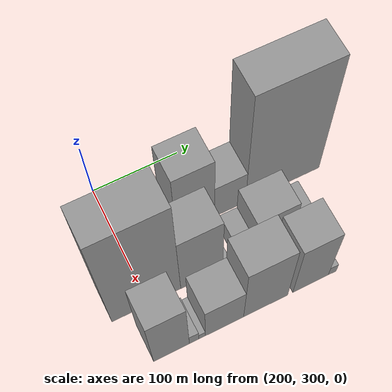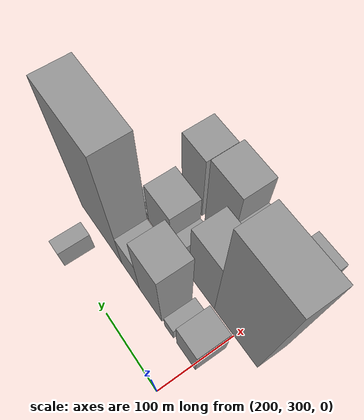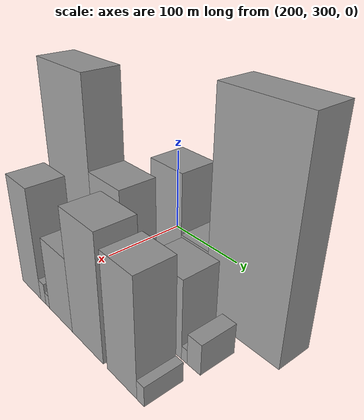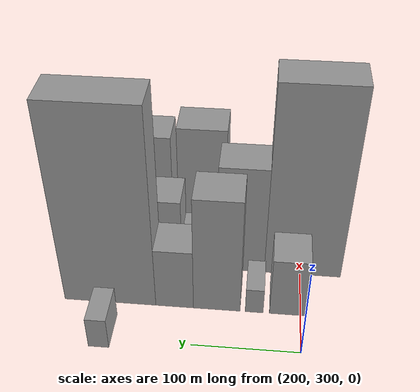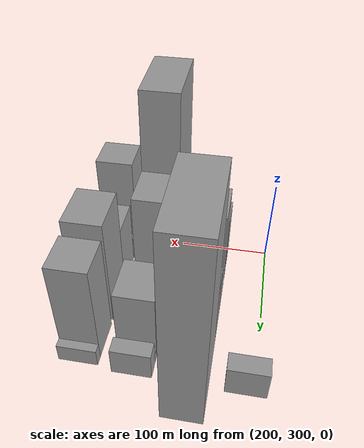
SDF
<sdf version="1.6">
 <world name="default">
  <model name="building_145">
   <static>1</static>
   <pose>210.0000 483.9629 0 0.000000 0.000000 0.000000</pose>
   <link name="link">
    <pose>0 0 18.00 0 0 0</pose>
    <collision name="collision"><geometry><box><size>40.0000 19.0243 36.0000</size></box></geometry></collision>
    <visual name="visual">
     <cast_shadows>0</cast_shadows>
     <geometry><box><size>40.0000 19.0243 36.0000</size></box></geometry>
     <material>
      <script>
       <uri>model://grey_wall/materials/scripts</uri>
       <uri>model://grey_wall/materials/textures</uri>
       <name>vrc/grey_wall</name>
      </script>
     </material>
    </visual>
   </link>
  </model>
  <model name="building_193">
   <static>1</static>
   <pose>265.0000 312.2725 0 0.000000 0.000000 0.000000</pose>
   <link name="link">
    <pose>0 0 34.50 0 0 0</pose>
    <collision name="collision"><geometry><box><size>40.0000 34.6798 69.0000</size></box></geometry></collision>
    <visual name="visual">
     <cast_shadows>0</cast_shadows>
     <geometry><box><size>40.0000 34.6798 69.0000</size></box></geometry>
     <material>
      <script>
       <uri>model://grey_wall/materials/scripts</uri>
       <uri>model://grey_wall/materials/textures</uri>
       <name>vrc/grey_wall</name>
      </script>
     </material>
    </visual>
   </link>
  </model>
  <model name="building_194">
   <static>1</static>
   <pose>265.0000 344.1793 0 0.000000 0.000000 0.000000</pose>
   <link name="link">
    <pose>0 0 15.00 0 0 0</pose>
    <collision name="collision"><geometry><box><size>40.0000 17.1338 30.0000</size></box></geometry></collision>
    <visual name="visual">
     <cast_shadows>0</cast_shadows>
     <geometry><box><size>40.0000 17.1338 30.0000</size></box></geometry>
     <material>
      <script>
       <uri>model://grey_wall/materials/scripts</uri>
       <uri>model://grey_wall/materials/textures</uri>
       <name>vrc/grey_wall</name>
      </script>
     </material>
    </visual>
   </link>
  </model>
  <model name="building_195">
   <static>1</static>
   <pose>265.0000 380.2860 0 0.000000 0.000000 0.000000</pose>
   <link name="link">
    <pose>0 0 67.50 0 0 0</pose>
    <collision name="collision"><geometry><box><size>40.0000 45.0798 135.0000</size></box></geometry></collision>
    <visual name="visual">
     <cast_shadows>0</cast_shadows>
     <geometry><box><size>40.0000 45.0798 135.0000</size></box></geometry>
     <material>
      <script>
       <uri>model://grey_wall/materials/scripts</uri>
       <uri>model://grey_wall/materials/textures</uri>
       <name>vrc/grey_wall</name>
      </script>
     </material>
    </visual>
   </link>
  </model>
  <model name="building_196">
   <static>1</static>
   <pose>265.0000 421.1002 0 0.000000 0.000000 0.000000</pose>
   <link name="link">
    <pose>0 0 36.00 0 0 0</pose>
    <collision name="collision"><geometry><box><size>40.0000 36.5485 72.0000</size></box></geometry></collision>
    <visual name="visual">
     <cast_shadows>0</cast_shadows>
     <geometry><box><size>40.0000 36.5485 72.0000</size></box></geometry>
     <material>
      <script>
       <uri>model://grey_wall/materials/scripts</uri>
       <uri>model://grey_wall/materials/textures</uri>
       <name>vrc/grey_wall</name>
      </script>
     </material>
    </visual>
   </link>
  </model>
  <model name="building_197">
   <static>1</static>
   <pose>265.0000 484.1575 0 0.000000 0.000000 0.000000</pose>
   <link name="link">
    <pose>0 0 112.50 0 0 0</pose>
    <collision name="collision"><geometry><box><size>40.0000 89.5661 225.0000</size></box></geometry></collision>
    <visual name="visual">
     <cast_shadows>0</cast_shadows>
     <geometry><box><size>40.0000 89.5661 225.0000</size></box></geometry>
     <material>
      <script>
       <uri>model://grey_wall/materials/scripts</uri>
       <uri>model://grey_wall/materials/textures</uri>
       <name>vrc/grey_wall</name>
      </script>
     </material>
    </visual>
   </link>
  </model>
  <model name="building_246">
   <static>1</static>
   <pose>320.0000 297.9126 0 0.000000 0.000000 0.000000</pose>
   <link name="link">
    <pose>0 0 109.50 0 0 0</pose>
    <collision name="collision"><geometry><box><size>40.0000 76.8711 219.0000</size></box></geometry></collision>
    <visual name="visual">
     <cast_shadows>0</cast_shadows>
     <geometry><box><size>40.0000 76.8711 219.0000</size></box></geometry>
     <material>
      <script>
       <uri>model://grey_wall/materials/scripts</uri>
       <uri>model://grey_wall/materials/textures</uri>
       <name>vrc/grey_wall</name>
      </script>
     </material>
    </visual>
   </link>
  </model>
  <model name="building_247">
   <static>1</static>
   <pose>320.0000 360.2757 0 0.000000 0.000000 0.000000</pose>
   <link name="link">
    <pose>0 0 64.50 0 0 0</pose>
    <collision name="collision"><geometry><box><size>40.0000 47.8551 129.0000</size></box></geometry></collision>
    <visual name="visual">
     <cast_shadows>0</cast_shadows>
     <geometry><box><size>40.0000 47.8551 129.0000</size></box></geometry>
     <material>
      <script>
       <uri>model://grey_wall/materials/scripts</uri>
       <uri>model://grey_wall/materials/textures</uri>
       <name>vrc/grey_wall</name>
      </script>
     </material>
    </visual>
   </link>
  </model>
  <model name="building_248">
   <static>1</static>
   <pose>320.0000 388.4399 0 0.000000 0.000000 0.000000</pose>
   <link name="link">
    <pose>0 0 9.00 0 0 0</pose>
    <collision name="collision"><geometry><box><size>40.0000 8.4733 18.0000</size></box></geometry></collision>
    <visual name="visual">
     <cast_shadows>0</cast_shadows>
     <geometry><box><size>40.0000 8.4733 18.0000</size></box></geometry>
     <material>
      <script>
       <uri>model://grey_wall/materials/scripts</uri>
       <uri>model://grey_wall/materials/textures</uri>
       <name>vrc/grey_wall</name>
      </script>
     </material>
    </visual>
   </link>
  </model>
  <model name="building_249">
   <static>1</static>
   <pose>320.0000 410.5685 0 0.000000 0.000000 0.000000</pose>
   <link name="link">
    <pose>0 0 19.50 0 0 0</pose>
    <collision name="collision"><geometry><box><size>40.0000 19.7838 39.0000</size></box></geometry></collision>
    <visual name="visual">
     <cast_shadows>0</cast_shadows>
     <geometry><box><size>40.0000 19.7838 39.0000</size></box></geometry>
     <material>
      <script>
       <uri>model://grey_wall/materials/scripts</uri>
       <uri>model://grey_wall/materials/textures</uri>
       <name>vrc/grey_wall</name>
      </script>
     </material>
    </visual>
   </link>
  </model>
  <model name="building_250">
   <static>1</static>
   <pose>320.0000 444.0755 0 0.000000 0.000000 0.000000</pose>
   <link name="link">
    <pose>0 0 42.00 0 0 0</pose>
    <collision name="collision"><geometry><box><size>40.0000 47.2302 84.0000</size></box></geometry></collision>
    <visual name="visual">
     <cast_shadows>0</cast_shadows>
     <geometry><box><size>40.0000 47.2302 84.0000</size></box></geometry>
     <material>
      <script>
       <uri>model://grey_wall/materials/scripts</uri>
       <uri>model://grey_wall/materials/textures</uri>
       <name>vrc/grey_wall</name>
      </script>
     </material>
    </visual>
   </link>
  </model>
  <model name="building_251">
   <static>1</static>
   <pose>320.0000 471.2905 0 0.000000 0.000000 0.000000</pose>
   <link name="link">
    <pose>0 0 7.50 0 0 0</pose>
    <collision name="collision"><geometry><box><size>40.0000 7.1999 15.0000</size></box></geometry></collision>
    <visual name="visual">
     <cast_shadows>0</cast_shadows>
     <geometry><box><size>40.0000 7.1999 15.0000</size></box></geometry>
     <material>
      <script>
       <uri>model://grey_wall/materials/scripts</uri>
       <uri>model://grey_wall/materials/textures</uri>
       <name>vrc/grey_wall</name>
      </script>
     </material>
    </visual>
   </link>
  </model>
  <model name="building_252">
   <static>1</static>
   <pose>320.0000 483.2172 0 0.000000 0.000000 0.000000</pose>
   <link name="link">
    <pose>0 0 16.50 0 0 0</pose>
    <collision name="collision"><geometry><box><size>40.0000 16.6533 33.0000</size></box></geometry></collision>
    <visual name="visual">
     <cast_shadows>0</cast_shadows>
     <geometry><box><size>40.0000 16.6533 33.0000</size></box></geometry>
     <material>
      <script>
       <uri>model://grey_wall/materials/scripts</uri>
       <uri>model://grey_wall/materials/textures</uri>
       <name>vrc/grey_wall</name>
      </script>
     </material>
    </visual>
   </link>
  </model>
  <model name="building_297">
   <static>1</static>
   <pose>375.0000 299.4305 0 0.000000 0.000000 0.000000</pose>
   <link name="link">
    <pose>0 0 61.50 0 0 0</pose>
    <collision name="collision"><geometry><box><size>40.0000 39.3001 123.0000</size></box></geometry></collision>
    <visual name="visual">
     <cast_shadows>0</cast_shadows>
     <geometry><box><size>40.0000 39.3001 123.0000</size></box></geometry>
     <material>
      <script>
       <uri>model://grey_wall/materials/scripts</uri>
       <uri>model://grey_wall/materials/textures</uri>
       <name>vrc/grey_wall</name>
      </script>
     </material>
    </visual>
   </link>
  </model>
  <model name="building_298">
   <static>1</static>
   <pose>375.0000 324.2861 0 0.000000 0.000000 0.000000</pose>
   <link name="link">
    <pose>0 0 12.00 0 0 0</pose>
    <collision name="collision"><geometry><box><size>40.0000 10.4110 24.0000</size></box></geometry></collision>
    <visual name="visual">
     <cast_shadows>0</cast_shadows>
     <geometry><box><size>40.0000 10.4110 24.0000</size></box></geometry>
     <material>
      <script>
       <uri>model://grey_wall/materials/scripts</uri>
       <uri>model://grey_wall/materials/textures</uri>
       <name>vrc/grey_wall</name>
      </script>
     </material>
    </visual>
   </link>
  </model>
  <model name="building_299">
   <static>1</static>
   <pose>375.0000 333.1618 0 0.000000 0.000000 0.000000</pose>
   <link name="link">
    <pose>0 0 7.50 0 0 0</pose>
    <collision name="collision"><geometry><box><size>40.0000 7.3405 15.0000</size></box></geometry></collision>
    <visual name="visual">
     <cast_shadows>0</cast_shadows>
     <geometry><box><size>40.0000 7.3405 15.0000</size></box></geometry>
     <material>
      <script>
       <uri>model://grey_wall/materials/scripts</uri>
       <uri>model://grey_wall/materials/textures</uri>
       <name>vrc/grey_wall</name>
      </script>
     </material>
    </visual>
   </link>
  </model>
  <model name="building_300">
   <static>1</static>
   <pose>375.0000 358.2591 0 0.000000 0.000000 0.000000</pose>
   <link name="link">
    <pose>0 0 40.50 0 0 0</pose>
    <collision name="collision"><geometry><box><size>40.0000 42.8543 81.0000</size></box></geometry></collision>
    <visual name="visual">
     <cast_shadows>0</cast_shadows>
     <geometry><box><size>40.0000 42.8543 81.0000</size></box></geometry>
     <material>
      <script>
       <uri>model://grey_wall/materials/scripts</uri>
       <uri>model://grey_wall/materials/textures</uri>
       <name>vrc/grey_wall</name>
      </script>
     </material>
    </visual>
   </link>
  </model>
  <model name="building_301">
   <static>1</static>
   <pose>375.0000 404.9564 0 0.000000 0.000000 0.000000</pose>
   <link name="link">
    <pose>0 0 66.00 0 0 0</pose>
    <collision name="collision"><geometry><box><size>40.0000 50.5403 132.0000</size></box></geometry></collision>
    <visual name="visual">
     <cast_shadows>0</cast_shadows>
     <geometry><box><size>40.0000 50.5403 132.0000</size></box></geometry>
     <material>
      <script>
       <uri>model://grey_wall/materials/scripts</uri>
       <uri>model://grey_wall/materials/textures</uri>
       <name>vrc/grey_wall</name>
      </script>
     </material>
    </visual>
   </link>
  </model>
  <model name="building_302">
   <static>1</static>
   <pose>375.0000 456.9096 0 0.000000 0.000000 0.000000</pose>
   <link name="link">
    <pose>0 0 60.00 0 0 0</pose>
    <collision name="collision"><geometry><box><size>40.0000 41.3659 120.0000</size></box></geometry></collision>
    <visual name="visual">
     <cast_shadows>0</cast_shadows>
     <geometry><box><size>40.0000 41.3659 120.0000</size></box></geometry>
     <material>
      <script>
       <uri>model://grey_wall/materials/scripts</uri>
       <uri>model://grey_wall/materials/textures</uri>
       <name>vrc/grey_wall</name>
      </script>
     </material>
    </visual>
   </link>
  </model>
  <model name="building_303">
   <static>1</static>
   <pose>375.0000 482.2839 0 0.000000 0.000000 0.000000</pose>
   <link name="link">
    <pose>0 0 10.50 0 0 0</pose>
    <collision name="collision"><geometry><box><size>40.0000 9.3828 21.0000</size></box></geometry></collision>
    <visual name="visual">
     <cast_shadows>0</cast_shadows>
     <geometry><box><size>40.0000 9.3828 21.0000</size></box></geometry>
     <material>
      <script>
       <uri>model://grey_wall/materials/scripts</uri>
       <uri>model://grey_wall/materials/textures</uri>
       <name>vrc/grey_wall</name>
      </script>
     </material>
    </visual>
   </link>
  </model>
 </world>
</sdf>
